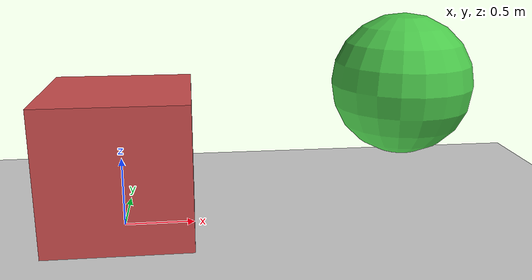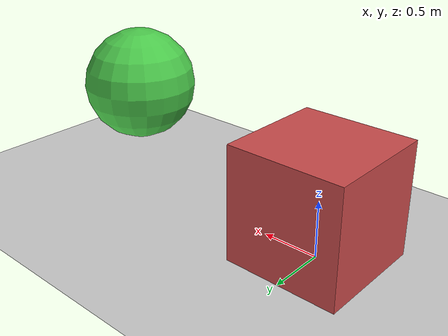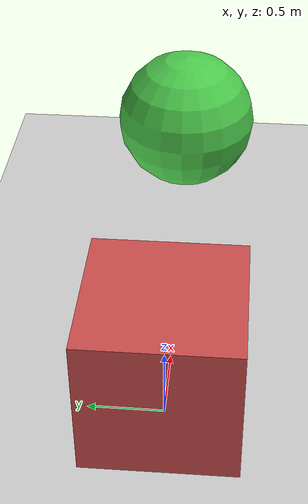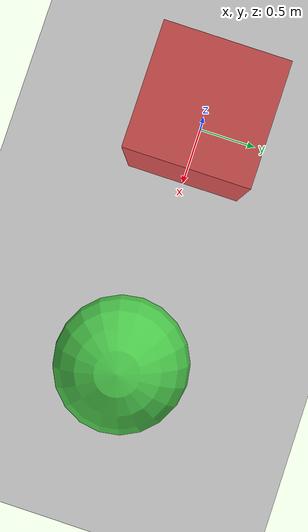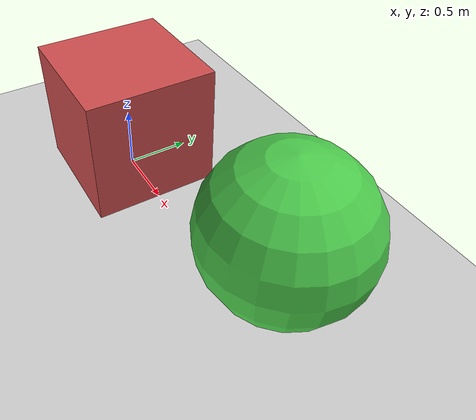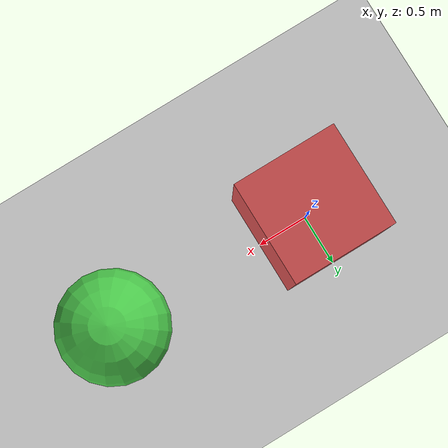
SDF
<?xml version="1.0" ?>
<sdf version="1.7">
  <world name="simple_world">
    <!-- Include a ground plane -->
    <include>
      <uri>model://ground_plane</uri>
    </include>

    <!-- Include a sun for lighting -->
    <include>
      <uri>model://sun</uri>
    </include>

    <!-- Add a simple box -->
    <model name="box">
      <pose>0 0 0.5 0 0 0</pose>
      <link name="link">
        <visual name="visual">
          <geometry>
            <box>
              <size>1 1 1</size>
            </box>
          </geometry>
          <material>
            <ambient>0.5 0.5 0.5 1</ambient>
            <diffuse>0.8 0.3 0.3 1</diffuse>
          </material>
        </visual>
        <collision name="collision">
          <geometry>
            <box>
              <size>1 1 1</size>
            </box>
          </geometry>
        </collision>
        <inertial>
          <mass>1.0</mass>
          <inertia>
            <ixx>0.166667</ixx>
            <ixy>0</ixy>
            <ixz>0</ixz>
            <iyy>0.166667</iyy>
            <iyz>0</iyz>
            <izz>0.166667</izz>
          </inertia>
        </inertial>
      </link>
    </model>

    <!-- Add a simple sphere -->
    <model name="sphere">
      <pose>2 0 1 0 0 0</pose>
      <link name="link">
        <visual name="visual">
          <geometry>
            <sphere>
              <radius>0.5</radius>
            </sphere>
          </geometry>
          <material>
            <ambient>0.5 0.5 0.5 1</ambient>
            <diffuse>0.3 0.8 0.3 1</diffuse>
          </material>
        </visual>
        <collision name="collision">
          <geometry>
            <sphere>
              <radius>0.5</radius>
            </sphere>
          </geometry>
        </collision>
        <inertial>
          <mass>1.0</mass>
          <inertia>
            <ixx>0.1</ixx>
            <ixy>0</ixy>
            <ixz>0</ixz>
            <iyy>0.1</iyy>
            <iyz>0</iyz>
            <izz>0.1</izz>
          </inertia>
        </inertial>
      </link>
    </model>
  </world>
</sdf>
